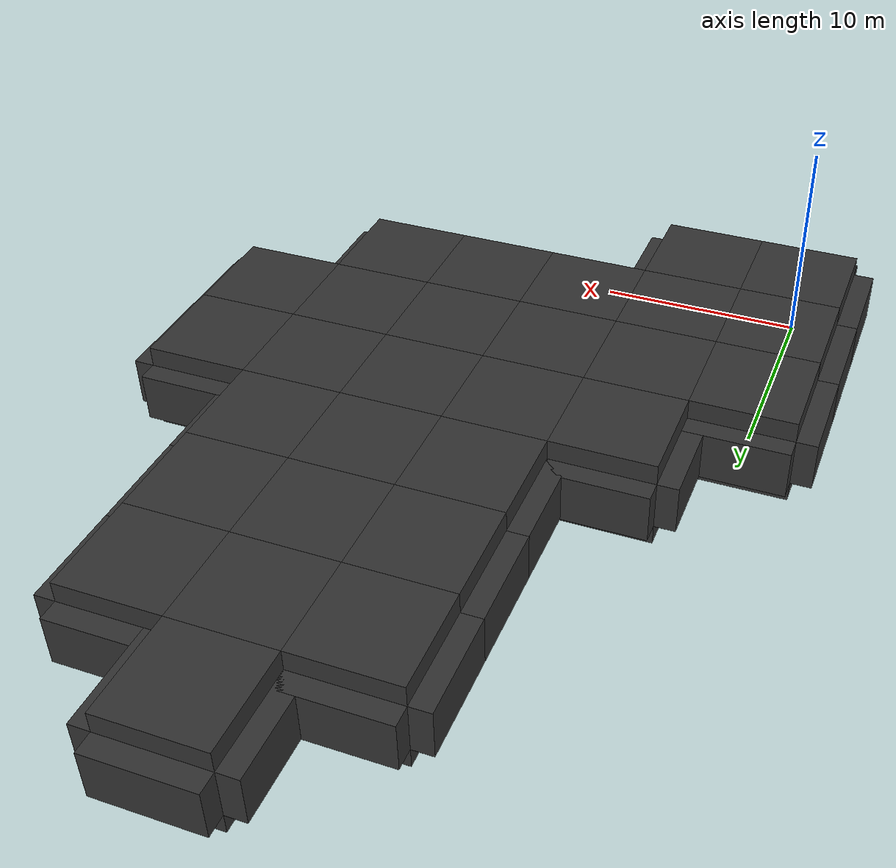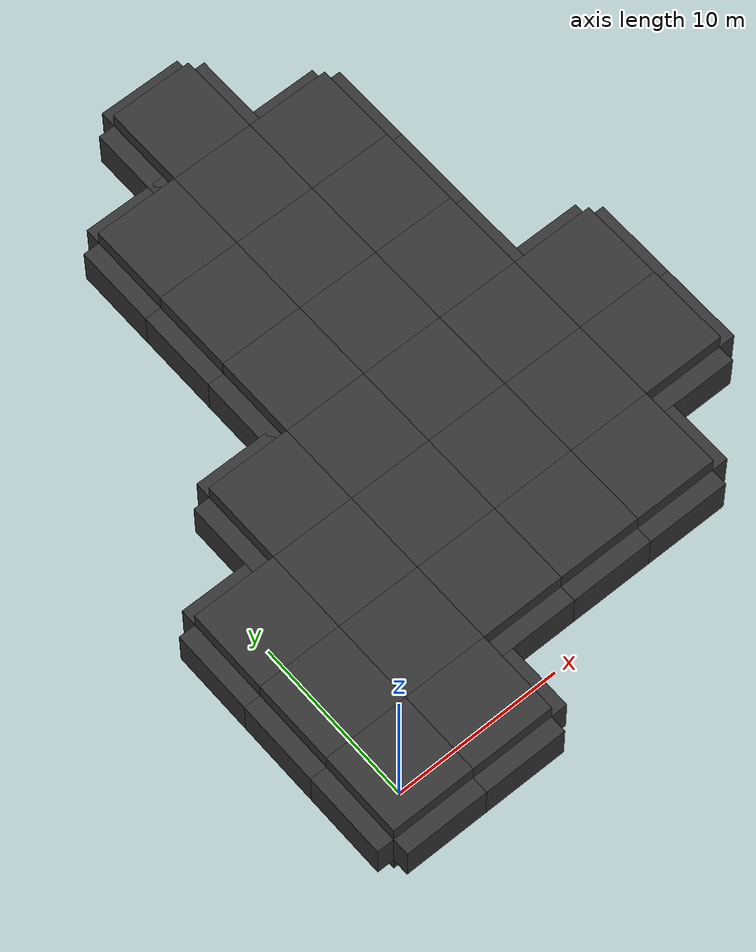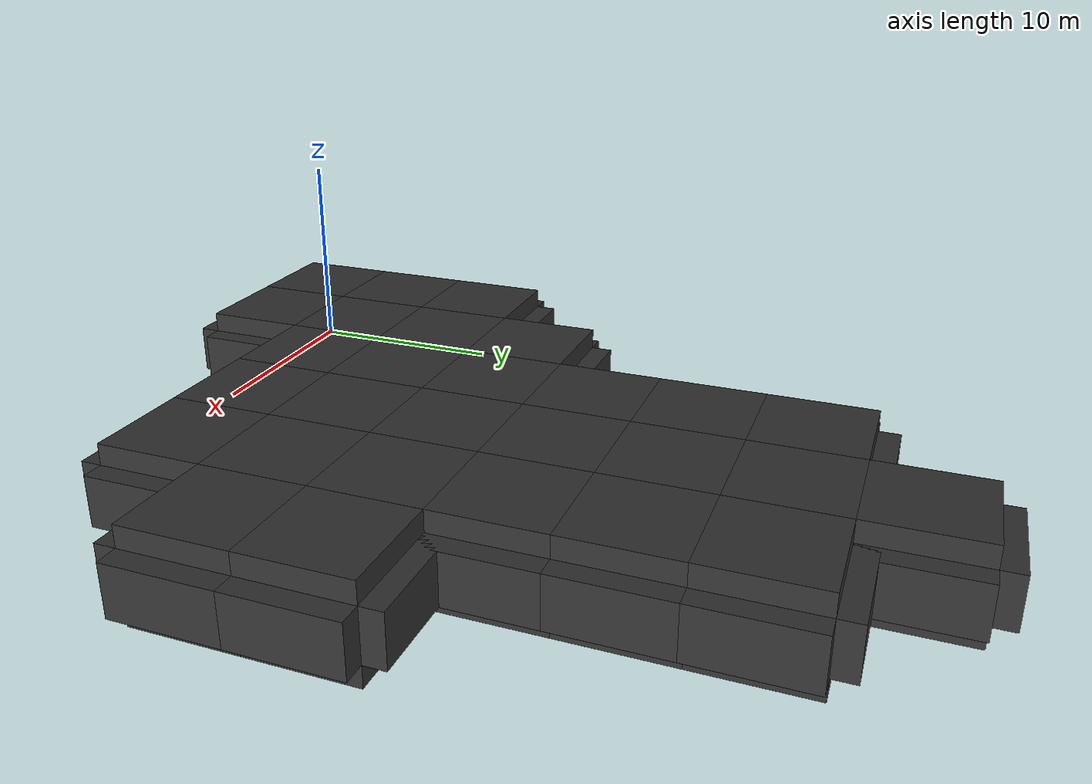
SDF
<sdf version="1.7">
 <world name="RG1">
  <plugin filename="gz-sim-physics-system" name="gz::sim::systems::Physics"/>
  <plugin filename="gz-sim-sensors-system" name="gz::sim::systems::Sensors">
   <render_engine>ogre2</render_engine>
  </plugin>
  <plugin filename="gz-sim-scene-broadcaster-system" name="gz::sim::systems::SceneBroadcaster"/>
  <plugin filename="gz-sim-user-commands-system" name="gz::sim::systems::UserCommands"/>
  <physics name="fast" type="ignored">
   <max_step_size>0.004</max_step_size>
   <real_time_factor>1</real_time_factor>
  </physics>
  <model name="floor_1">
   <static>true</static>
   <pose>0.0 0.0 -0.5 0.0 0.0 0.0</pose>
   <link name="floor_1-base-link">
    <visual name="floor_1-visual">
     <geometry><box><size>5 5 1.0</size></box></geometry>
     <material><diffuse>0.2 0.2 0.2 1</diffuse><specular>0.1 0.1 0.1 1</specular></material>
    </visual>
    <collision name="floor_1-collision"><geometry><box><size>5 5 1.0</size></box></geometry></collision>
   </link>
  </model>
  <model name="ceiling_1">
   <static>true</static>
   <pose>0.0 0.0 2.9 0.0 0.0 0.0</pose>
   <link name="ceiling_1-base-link">
    <visual name="ceiling_1-visual">
     <geometry><box><size>5 5 1.0</size></box></geometry>
     <material><diffuse>0.2 0.2 0.2 1</diffuse><specular>0.1 0.1 0.1 1</specular></material>
    </visual>
    <collision name="ceiling_1-collision"><geometry><box><size>5 5 1.0</size></box></geometry></collision>
    <light type="point" name="ceiling_1-light">
     <pose>0 0 -1 0 0 0</pose>
     <cast_shadows>false</cast_shadows>
     <diffuse>0.8 0.8 0.8 1</diffuse>
     <attenuation>
      <range>10</range>
      <constant>0.8</constant>
      <linear>0.05</linear>
      <quadratic>0.01</quadratic>
     </attenuation>
    </light>
   </link>
  </model>
  <model name="wall_1">
   <static>true</static>
   <pose>-3.0 0.0 1.2 0.0 0.0 1.570796326795</pose>
   <link name="wall_1-base-link">
    <visual name="wall_1-visual">
     <geometry><box><size>5 1 2.4</size></box></geometry>
     <material><diffuse>0.2 0.2 0.2 1</diffuse><specular>0.1 0.1 0.1 1</specular></material>
    </visual>
    <collision name="wall_1-collision"><geometry><box><size>5 1 2.4</size></box></geometry></collision>
   </link>
  </model>
  <model name="wall_2">
   <static>true</static>
   <pose>0.0 -3.0 1.2 0.0 0.0 0.0</pose>
   <link name="wall_2-base-link">
    <visual name="wall_2-visual">
     <geometry><box><size>5 1 2.4</size></box></geometry>
     <material><diffuse>0.2 0.2 0.2 1</diffuse><specular>0.1 0.1 0.1 1</specular></material>
    </visual>
    <collision name="wall_2-collision"><geometry><box><size>5 1 2.4</size></box></geometry></collision>
   </link>
  </model>
  <model name="floor_2">
   <static>true</static>
   <pose>0.0 5.0 -0.5 0.0 0.0 0.0</pose>
   <link name="floor_2-base-link">
    <visual name="floor_2-visual">
     <geometry><box><size>5 5 1.0</size></box></geometry>
     <material><diffuse>0.2 0.2 0.2 1</diffuse><specular>0.1 0.1 0.1 1</specular></material>
    </visual>
    <collision name="floor_2-collision"><geometry><box><size>5 5 1.0</size></box></geometry></collision>
   </link>
  </model>
  <model name="ceiling_2">
   <static>true</static>
   <pose>0.0 5.0 2.9 0.0 0.0 0.0</pose>
   <link name="ceiling_2-base-link">
    <visual name="ceiling_2-visual">
     <geometry><box><size>5 5 1.0</size></box></geometry>
     <material><diffuse>0.2 0.2 0.2 1</diffuse><specular>0.1 0.1 0.1 1</specular></material>
    </visual>
    <collision name="ceiling_2-collision"><geometry><box><size>5 5 1.0</size></box></geometry></collision>
    <light type="point" name="ceiling_2-light">
     <pose>0 0 -1 0 0 0</pose>
     <cast_shadows>false</cast_shadows>
     <diffuse>0.8 0.8 0.8 1</diffuse>
     <attenuation>
      <range>10</range>
      <constant>0.8</constant>
      <linear>0.05</linear>
      <quadratic>0.01</quadratic>
     </attenuation>
    </light>
   </link>
  </model>
  <model name="wall_3">
   <static>true</static>
   <pose>-3.0 5.0 1.2 0.0 0.0 1.570796326795</pose>
   <link name="wall_3-base-link">
    <visual name="wall_3-visual">
     <geometry><box><size>5 1 2.4</size></box></geometry>
     <material><diffuse>0.2 0.2 0.2 1</diffuse><specular>0.1 0.1 0.1 1</specular></material>
    </visual>
    <collision name="wall_3-collision"><geometry><box><size>5 1 2.4</size></box></geometry></collision>
   </link>
  </model>
  <model name="floor_3">
   <static>true</static>
   <pose>0.0 10.0 -0.5 0.0 0.0 0.0</pose>
   <link name="floor_3-base-link">
    <visual name="floor_3-visual">
     <geometry><box><size>5 5 1.0</size></box></geometry>
     <material><diffuse>0.2 0.2 0.2 1</diffuse><specular>0.1 0.1 0.1 1</specular></material>
    </visual>
    <collision name="floor_3-collision"><geometry><box><size>5 5 1.0</size></box></geometry></collision>
   </link>
  </model>
  <model name="ceiling_3">
   <static>true</static>
   <pose>0.0 10.0 2.9 0.0 0.0 0.0</pose>
   <link name="ceiling_3-base-link">
    <visual name="ceiling_3-visual">
     <geometry><box><size>5 5 1.0</size></box></geometry>
     <material><diffuse>0.2 0.2 0.2 1</diffuse><specular>0.1 0.1 0.1 1</specular></material>
    </visual>
    <collision name="ceiling_3-collision"><geometry><box><size>5 5 1.0</size></box></geometry></collision>
    <light type="point" name="ceiling_3-light">
     <pose>0 0 -1 0 0 0</pose>
     <cast_shadows>false</cast_shadows>
     <diffuse>0.8 0.8 0.8 1</diffuse>
     <attenuation>
      <range>10</range>
      <constant>0.8</constant>
      <linear>0.05</linear>
      <quadratic>0.01</quadratic>
     </attenuation>
    </light>
   </link>
  </model>
  <model name="wall_4">
   <static>true</static>
   <pose>-3.0 10.0 1.2 0.0 0.0 1.570796326795</pose>
   <link name="wall_4-base-link">
    <visual name="wall_4-visual">
     <geometry><box><size>5 1 2.4</size></box></geometry>
     <material><diffuse>0.2 0.2 0.2 1</diffuse><specular>0.1 0.1 0.1 1</specular></material>
    </visual>
    <collision name="wall_4-collision"><geometry><box><size>5 1 2.4</size></box></geometry></collision>
   </link>
  </model>
  <model name="wall_5">
   <static>true</static>
   <pose>0.0 13.0 1.2 0.0 0.0 0.0</pose>
   <link name="wall_5-base-link">
    <visual name="wall_5-visual">
     <geometry><box><size>5 1 2.4</size></box></geometry>
     <material><diffuse>0.2 0.2 0.2 1</diffuse><specular>0.1 0.1 0.1 1</specular></material>
    </visual>
    <collision name="wall_5-collision"><geometry><box><size>5 1 2.4</size></box></geometry></collision>
   </link>
  </model>
  <model name="floor_4">
   <static>true</static>
   <pose>5.0 0.0 -0.5 0.0 0.0 0.0</pose>
   <link name="floor_4-base-link">
    <visual name="floor_4-visual">
     <geometry><box><size>5 5 1.0</size></box></geometry>
     <material><diffuse>0.2 0.2 0.2 1</diffuse><specular>0.1 0.1 0.1 1</specular></material>
    </visual>
    <collision name="floor_4-collision"><geometry><box><size>5 5 1.0</size></box></geometry></collision>
   </link>
  </model>
  <model name="ceiling_4">
   <static>true</static>
   <pose>5.0 0.0 2.9 0.0 0.0 0.0</pose>
   <link name="ceiling_4-base-link">
    <visual name="ceiling_4-visual">
     <geometry><box><size>5 5 1.0</size></box></geometry>
     <material><diffuse>0.2 0.2 0.2 1</diffuse><specular>0.1 0.1 0.1 1</specular></material>
    </visual>
    <collision name="ceiling_4-collision"><geometry><box><size>5 5 1.0</size></box></geometry></collision>
    <light type="point" name="ceiling_4-light">
     <pose>0 0 -1 0 0 0</pose>
     <cast_shadows>false</cast_shadows>
     <diffuse>0.8 0.8 0.8 1</diffuse>
     <attenuation>
      <range>10</range>
      <constant>0.8</constant>
      <linear>0.05</linear>
      <quadratic>0.01</quadratic>
     </attenuation>
    </light>
   </link>
  </model>
  <model name="wall_6">
   <static>true</static>
   <pose>8.0 0.0 1.2 0.0 0.0 1.570796326795</pose>
   <link name="wall_6-base-link">
    <visual name="wall_6-visual">
     <geometry><box><size>5 1 2.4</size></box></geometry>
     <material><diffuse>0.2 0.2 0.2 1</diffuse><specular>0.1 0.1 0.1 1</specular></material>
    </visual>
    <collision name="wall_6-collision"><geometry><box><size>5 1 2.4</size></box></geometry></collision>
   </link>
  </model>
  <model name="wall_7">
   <static>true</static>
   <pose>5.0 -3.0 1.2 0.0 0.0 0.0</pose>
   <link name="wall_7-base-link">
    <visual name="wall_7-visual">
     <geometry><box><size>5 1 2.4</size></box></geometry>
     <material><diffuse>0.2 0.2 0.2 1</diffuse><specular>0.1 0.1 0.1 1</specular></material>
    </visual>
    <collision name="wall_7-collision"><geometry><box><size>5 1 2.4</size></box></geometry></collision>
   </link>
  </model>
  <model name="floor_5">
   <static>true</static>
   <pose>5.0 5.0 -0.5 0.0 0.0 0.0</pose>
   <link name="floor_5-base-link">
    <visual name="floor_5-visual">
     <geometry><box><size>5 5 1.0</size></box></geometry>
     <material><diffuse>0.2 0.2 0.2 1</diffuse><specular>0.1 0.1 0.1 1</specular></material>
    </visual>
    <collision name="floor_5-collision"><geometry><box><size>5 5 1.0</size></box></geometry></collision>
   </link>
  </model>
  <model name="ceiling_5">
   <static>true</static>
   <pose>5.0 5.0 2.9 0.0 0.0 0.0</pose>
   <link name="ceiling_5-base-link">
    <visual name="ceiling_5-visual">
     <geometry><box><size>5 5 1.0</size></box></geometry>
     <material><diffuse>0.2 0.2 0.2 1</diffuse><specular>0.1 0.1 0.1 1</specular></material>
    </visual>
    <collision name="ceiling_5-collision"><geometry><box><size>5 5 1.0</size></box></geometry></collision>
    <light type="point" name="ceiling_5-light">
     <pose>0 0 -1 0 0 0</pose>
     <cast_shadows>false</cast_shadows>
     <diffuse>0.8 0.8 0.8 1</diffuse>
     <attenuation>
      <range>10</range>
      <constant>0.8</constant>
      <linear>0.05</linear>
      <quadratic>0.01</quadratic>
     </attenuation>
    </light>
   </link>
  </model>
  <model name="floor_6">
   <static>true</static>
   <pose>5.0 10.0 -0.5 0.0 0.0 0.0</pose>
   <link name="floor_6-base-link">
    <visual name="floor_6-visual">
     <geometry><box><size>5 5 1.0</size></box></geometry>
     <material><diffuse>0.2 0.2 0.2 1</diffuse><specular>0.1 0.1 0.1 1</specular></material>
    </visual>
    <collision name="floor_6-collision"><geometry><box><size>5 5 1.0</size></box></geometry></collision>
   </link>
  </model>
  <model name="ceiling_6">
   <static>true</static>
   <pose>5.0 10.0 2.9 0.0 0.0 0.0</pose>
   <link name="ceiling_6-base-link">
    <visual name="ceiling_6-visual">
     <geometry><box><size>5 5 1.0</size></box></geometry>
     <material><diffuse>0.2 0.2 0.2 1</diffuse><specular>0.1 0.1 0.1 1</specular></material>
    </visual>
    <collision name="ceiling_6-collision"><geometry><box><size>5 5 1.0</size></box></geometry></collision>
    <light type="point" name="ceiling_6-light">
     <pose>0 0 -1 0 0 0</pose>
     <cast_shadows>false</cast_shadows>
     <diffuse>0.8 0.8 0.8 1</diffuse>
     <attenuation>
      <range>10</range>
      <constant>0.8</constant>
      <linear>0.05</linear>
      <quadratic>0.01</quadratic>
     </attenuation>
    </light>
   </link>
  </model>
  <model name="floor_7">
   <static>true</static>
   <pose>5.0 15.0 -0.5 0.0 0.0 0.0</pose>
   <link name="floor_7-base-link">
    <visual name="floor_7-visual">
     <geometry><box><size>5 5 1.0</size></box></geometry>
     <material><diffuse>0.2 0.2 0.2 1</diffuse><specular>0.1 0.1 0.1 1</specular></material>
    </visual>
    <collision name="floor_7-collision"><geometry><box><size>5 5 1.0</size></box></geometry></collision>
   </link>
  </model>
  <model name="ceiling_7">
   <static>true</static>
   <pose>5.0 15.0 2.9 0.0 0.0 0.0</pose>
   <link name="ceiling_7-base-link">
    <visual name="ceiling_7-visual">
     <geometry><box><size>5 5 1.0</size></box></geometry>
     <material><diffuse>0.2 0.2 0.2 1</diffuse><specular>0.1 0.1 0.1 1</specular></material>
    </visual>
    <collision name="ceiling_7-collision"><geometry><box><size>5 5 1.0</size></box></geometry></collision>
    <light type="point" name="ceiling_7-light">
     <pose>0 0 -1 0 0 0</pose>
     <cast_shadows>false</cast_shadows>
     <diffuse>0.8 0.8 0.8 1</diffuse>
     <attenuation>
      <range>10</range>
      <constant>0.8</constant>
      <linear>0.05</linear>
      <quadratic>0.01</quadratic>
     </attenuation>
    </light>
   </link>
  </model>
  <model name="wall_8">
   <static>true</static>
   <pose>2.0 15.0 1.2 0.0 0.0 1.570796326795</pose>
   <link name="wall_8-base-link">
    <visual name="wall_8-visual">
     <geometry><box><size>5 1 2.4</size></box></geometry>
     <material><diffuse>0.2 0.2 0.2 1</diffuse><specular>0.1 0.1 0.1 1</specular></material>
    </visual>
    <collision name="wall_8-collision"><geometry><box><size>5 1 2.4</size></box></geometry></collision>
   </link>
  </model>
  <model name="wall_9">
   <static>true</static>
   <pose>5.0 18.0 1.2 0.0 0.0 0.0</pose>
   <link name="wall_9-base-link">
    <visual name="wall_9-visual">
     <geometry><box><size>5 1 2.4</size></box></geometry>
     <material><diffuse>0.2 0.2 0.2 1</diffuse><specular>0.1 0.1 0.1 1</specular></material>
    </visual>
    <collision name="wall_9-collision"><geometry><box><size>5 1 2.4</size></box></geometry></collision>
   </link>
  </model>
  <model name="floor_8">
   <static>true</static>
   <pose>10.0 5.0 -0.5 0.0 0.0 0.0</pose>
   <link name="floor_8-base-link">
    <visual name="floor_8-visual">
     <geometry><box><size>5 5 1.0</size></box></geometry>
     <material><diffuse>0.2 0.2 0.2 1</diffuse><specular>0.1 0.1 0.1 1</specular></material>
    </visual>
    <collision name="floor_8-collision"><geometry><box><size>5 5 1.0</size></box></geometry></collision>
   </link>
  </model>
  <model name="ceiling_8">
   <static>true</static>
   <pose>10.0 5.0 2.9 0.0 0.0 0.0</pose>
   <link name="ceiling_8-base-link">
    <visual name="ceiling_8-visual">
     <geometry><box><size>5 5 1.0</size></box></geometry>
     <material><diffuse>0.2 0.2 0.2 1</diffuse><specular>0.1 0.1 0.1 1</specular></material>
    </visual>
    <collision name="ceiling_8-collision"><geometry><box><size>5 5 1.0</size></box></geometry></collision>
    <light type="point" name="ceiling_8-light">
     <pose>0 0 -1 0 0 0</pose>
     <cast_shadows>false</cast_shadows>
     <diffuse>0.8 0.8 0.8 1</diffuse>
     <attenuation>
      <range>10</range>
      <constant>0.8</constant>
      <linear>0.05</linear>
      <quadratic>0.01</quadratic>
     </attenuation>
    </light>
   </link>
  </model>
  <model name="wall_10">
   <static>true</static>
   <pose>10.0 2.0 1.2 0.0 0.0 0.0</pose>
   <link name="wall_10-base-link">
    <visual name="wall_10-visual">
     <geometry><box><size>5 1 2.4</size></box></geometry>
     <material><diffuse>0.2 0.2 0.2 1</diffuse><specular>0.1 0.1 0.1 1</specular></material>
    </visual>
    <collision name="wall_10-collision"><geometry><box><size>5 1 2.4</size></box></geometry></collision>
   </link>
  </model>
  <model name="floor_9">
   <static>true</static>
   <pose>10.0 10.0 -0.5 0.0 0.0 0.0</pose>
   <link name="floor_9-base-link">
    <visual name="floor_9-visual">
     <geometry><box><size>5 5 1.0</size></box></geometry>
     <material><diffuse>0.2 0.2 0.2 1</diffuse><specular>0.1 0.1 0.1 1</specular></material>
    </visual>
    <collision name="floor_9-collision"><geometry><box><size>5 5 1.0</size></box></geometry></collision>
   </link>
  </model>
  <model name="ceiling_9">
   <static>true</static>
   <pose>10.0 10.0 2.9 0.0 0.0 0.0</pose>
   <link name="ceiling_9-base-link">
    <visual name="ceiling_9-visual">
     <geometry><box><size>5 5 1.0</size></box></geometry>
     <material><diffuse>0.2 0.2 0.2 1</diffuse><specular>0.1 0.1 0.1 1</specular></material>
    </visual>
    <collision name="ceiling_9-collision"><geometry><box><size>5 5 1.0</size></box></geometry></collision>
    <light type="point" name="ceiling_9-light">
     <pose>0 0 -1 0 0 0</pose>
     <cast_shadows>false</cast_shadows>
     <diffuse>0.8 0.8 0.8 1</diffuse>
     <attenuation>
      <range>10</range>
      <constant>0.8</constant>
      <linear>0.05</linear>
      <quadratic>0.01</quadratic>
     </attenuation>
    </light>
   </link>
  </model>
  <model name="floor_10">
   <static>true</static>
   <pose>10.0 15.0 -0.5 0.0 0.0 0.0</pose>
   <link name="floor_10-base-link">
    <visual name="floor_10-visual">
     <geometry><box><size>5 5 1.0</size></box></geometry>
     <material><diffuse>0.2 0.2 0.2 1</diffuse><specular>0.1 0.1 0.1 1</specular></material>
    </visual>
    <collision name="floor_10-collision"><geometry><box><size>5 5 1.0</size></box></geometry></collision>
   </link>
  </model>
  <model name="ceiling_10">
   <static>true</static>
   <pose>10.0 15.0 2.9 0.0 0.0 0.0</pose>
   <link name="ceiling_10-base-link">
    <visual name="ceiling_10-visual">
     <geometry><box><size>5 5 1.0</size></box></geometry>
     <material><diffuse>0.2 0.2 0.2 1</diffuse><specular>0.1 0.1 0.1 1</specular></material>
    </visual>
    <collision name="ceiling_10-collision"><geometry><box><size>5 5 1.0</size></box></geometry></collision>
    <light type="point" name="ceiling_10-light">
     <pose>0 0 -1 0 0 0</pose>
     <cast_shadows>false</cast_shadows>
     <diffuse>0.8 0.8 0.8 1</diffuse>
     <attenuation>
      <range>10</range>
      <constant>0.8</constant>
      <linear>0.05</linear>
      <quadratic>0.01</quadratic>
     </attenuation>
    </light>
   </link>
  </model>
  <model name="floor_11">
   <static>true</static>
   <pose>10.0 20.0 -0.5 0.0 0.0 0.0</pose>
   <link name="floor_11-base-link">
    <visual name="floor_11-visual">
     <geometry><box><size>5 5 1.0</size></box></geometry>
     <material><diffuse>0.2 0.2 0.2 1</diffuse><specular>0.1 0.1 0.1 1</specular></material>
    </visual>
    <collision name="floor_11-collision"><geometry><box><size>5 5 1.0</size></box></geometry></collision>
   </link>
  </model>
  <model name="ceiling_11">
   <static>true</static>
   <pose>10.0 20.0 2.9 0.0 0.0 0.0</pose>
   <link name="ceiling_11-base-link">
    <visual name="ceiling_11-visual">
     <geometry><box><size>5 5 1.0</size></box></geometry>
     <material><diffuse>0.2 0.2 0.2 1</diffuse><specular>0.1 0.1 0.1 1</specular></material>
    </visual>
    <collision name="ceiling_11-collision"><geometry><box><size>5 5 1.0</size></box></geometry></collision>
    <light type="point" name="ceiling_11-light">
     <pose>0 0 -1 0 0 0</pose>
     <cast_shadows>false</cast_shadows>
     <diffuse>0.8 0.8 0.8 1</diffuse>
     <attenuation>
      <range>10</range>
      <constant>0.8</constant>
      <linear>0.05</linear>
      <quadratic>0.01</quadratic>
     </attenuation>
    </light>
   </link>
  </model>
  <model name="wall_11">
   <static>true</static>
   <pose>7.0 20.0 1.2 0.0 0.0 1.570796326795</pose>
   <link name="wall_11-base-link">
    <visual name="wall_11-visual">
     <geometry><box><size>5 1 2.4</size></box></geometry>
     <material><diffuse>0.2 0.2 0.2 1</diffuse><specular>0.1 0.1 0.1 1</specular></material>
    </visual>
    <collision name="wall_11-collision"><geometry><box><size>5 1 2.4</size></box></geometry></collision>
   </link>
  </model>
  <model name="floor_12">
   <static>true</static>
   <pose>10.0 25.0 -0.5 0.0 0.0 0.0</pose>
   <link name="floor_12-base-link">
    <visual name="floor_12-visual">
     <geometry><box><size>5 5 1.0</size></box></geometry>
     <material><diffuse>0.2 0.2 0.2 1</diffuse><specular>0.1 0.1 0.1 1</specular></material>
    </visual>
    <collision name="floor_12-collision"><geometry><box><size>5 5 1.0</size></box></geometry></collision>
   </link>
  </model>
  <model name="ceiling_12">
   <static>true</static>
   <pose>10.0 25.0 2.9 0.0 0.0 0.0</pose>
   <link name="ceiling_12-base-link">
    <visual name="ceiling_12-visual">
     <geometry><box><size>5 5 1.0</size></box></geometry>
     <material><diffuse>0.2 0.2 0.2 1</diffuse><specular>0.1 0.1 0.1 1</specular></material>
    </visual>
    <collision name="ceiling_12-collision"><geometry><box><size>5 5 1.0</size></box></geometry></collision>
    <light type="point" name="ceiling_12-light">
     <pose>0 0 -1 0 0 0</pose>
     <cast_shadows>false</cast_shadows>
     <diffuse>0.8 0.8 0.8 1</diffuse>
     <attenuation>
      <range>10</range>
      <constant>0.8</constant>
      <linear>0.05</linear>
      <quadratic>0.01</quadratic>
     </attenuation>
    </light>
   </link>
  </model>
  <model name="wall_12">
   <static>true</static>
   <pose>7.0 25.0 1.2 0.0 0.0 1.570796326795</pose>
   <link name="wall_12-base-link">
    <visual name="wall_12-visual">
     <geometry><box><size>5 1 2.4</size></box></geometry>
     <material><diffuse>0.2 0.2 0.2 1</diffuse><specular>0.1 0.1 0.1 1</specular></material>
    </visual>
    <collision name="wall_12-collision"><geometry><box><size>5 1 2.4</size></box></geometry></collision>
   </link>
  </model>
  <model name="floor_13">
   <static>true</static>
   <pose>10.0 30.0 -0.5 0.0 0.0 0.0</pose>
   <link name="floor_13-base-link">
    <visual name="floor_13-visual">
     <geometry><box><size>5 5 1.0</size></box></geometry>
     <material><diffuse>0.2 0.2 0.2 1</diffuse><specular>0.1 0.1 0.1 1</specular></material>
    </visual>
    <collision name="floor_13-collision"><geometry><box><size>5 5 1.0</size></box></geometry></collision>
   </link>
  </model>
  <model name="ceiling_13">
   <static>true</static>
   <pose>10.0 30.0 2.9 0.0 0.0 0.0</pose>
   <link name="ceiling_13-base-link">
    <visual name="ceiling_13-visual">
     <geometry><box><size>5 5 1.0</size></box></geometry>
     <material><diffuse>0.2 0.2 0.2 1</diffuse><specular>0.1 0.1 0.1 1</specular></material>
    </visual>
    <collision name="ceiling_13-collision"><geometry><box><size>5 5 1.0</size></box></geometry></collision>
    <light type="point" name="ceiling_13-light">
     <pose>0 0 -1 0 0 0</pose>
     <cast_shadows>false</cast_shadows>
     <diffuse>0.8 0.8 0.8 1</diffuse>
     <attenuation>
      <range>10</range>
      <constant>0.8</constant>
      <linear>0.05</linear>
      <quadratic>0.01</quadratic>
     </attenuation>
    </light>
   </link>
  </model>
  <model name="wall_13">
   <static>true</static>
   <pose>7.0 30.0 1.2 0.0 0.0 1.570796326795</pose>
   <link name="wall_13-base-link">
    <visual name="wall_13-visual">
     <geometry><box><size>5 1 2.4</size></box></geometry>
     <material><diffuse>0.2 0.2 0.2 1</diffuse><specular>0.1 0.1 0.1 1</specular></material>
    </visual>
    <collision name="wall_13-collision"><geometry><box><size>5 1 2.4</size></box></geometry></collision>
   </link>
  </model>
  <model name="wall_14">
   <static>true</static>
   <pose>10.0 33.0 1.2 0.0 0.0 0.0</pose>
   <link name="wall_14-base-link">
    <visual name="wall_14-visual">
     <geometry><box><size>5 1 2.4</size></box></geometry>
     <material><diffuse>0.2 0.2 0.2 1</diffuse><specular>0.1 0.1 0.1 1</specular></material>
    </visual>
    <collision name="wall_14-collision"><geometry><box><size>5 1 2.4</size></box></geometry></collision>
   </link>
  </model>
  <model name="floor_14">
   <static>true</static>
   <pose>15.0 5.0 -0.5 0.0 0.0 0.0</pose>
   <link name="floor_14-base-link">
    <visual name="floor_14-visual">
     <geometry><box><size>5 5 1.0</size></box></geometry>
     <material><diffuse>0.2 0.2 0.2 1</diffuse><specular>0.1 0.1 0.1 1</specular></material>
    </visual>
    <collision name="floor_14-collision"><geometry><box><size>5 5 1.0</size></box></geometry></collision>
   </link>
  </model>
  <model name="ceiling_14">
   <static>true</static>
   <pose>15.0 5.0 2.9 0.0 0.0 0.0</pose>
   <link name="ceiling_14-base-link">
    <visual name="ceiling_14-visual">
     <geometry><box><size>5 5 1.0</size></box></geometry>
     <material><diffuse>0.2 0.2 0.2 1</diffuse><specular>0.1 0.1 0.1 1</specular></material>
    </visual>
    <collision name="ceiling_14-collision"><geometry><box><size>5 5 1.0</size></box></geometry></collision>
    <light type="point" name="ceiling_14-light">
     <pose>0 0 -1 0 0 0</pose>
     <cast_shadows>false</cast_shadows>
     <diffuse>0.8 0.8 0.8 1</diffuse>
     <attenuation>
      <range>10</range>
      <constant>0.8</constant>
      <linear>0.05</linear>
      <quadratic>0.01</quadratic>
     </attenuation>
    </light>
   </link>
  </model>
  <model name="wall_15">
   <static>true</static>
   <pose>15.0 2.0 1.2 0.0 0.0 0.0</pose>
   <link name="wall_15-base-link">
    <visual name="wall_15-visual">
     <geometry><box><size>5 1 2.4</size></box></geometry>
     <material><diffuse>0.2 0.2 0.2 1</diffuse><specular>0.1 0.1 0.1 1</specular></material>
    </visual>
    <collision name="wall_15-collision"><geometry><box><size>5 1 2.4</size></box></geometry></collision>
   </link>
  </model>
  <model name="floor_15">
   <static>true</static>
   <pose>15.0 10.0 -0.5 0.0 0.0 0.0</pose>
   <link name="floor_15-base-link">
    <visual name="floor_15-visual">
     <geometry><box><size>5 5 1.0</size></box></geometry>
     <material><diffuse>0.2 0.2 0.2 1</diffuse><specular>0.1 0.1 0.1 1</specular></material>
    </visual>
    <collision name="floor_15-collision"><geometry><box><size>5 5 1.0</size></box></geometry></collision>
   </link>
  </model>
  <model name="ceiling_15">
   <static>true</static>
   <pose>15.0 10.0 2.9 0.0 0.0 0.0</pose>
   <link name="ceiling_15-base-link">
    <visual name="ceiling_15-visual">
     <geometry><box><size>5 5 1.0</size></box></geometry>
     <material><diffuse>0.2 0.2 0.2 1</diffuse><specular>0.1 0.1 0.1 1</specular></material>
    </visual>
    <collision name="ceiling_15-collision"><geometry><box><size>5 5 1.0</size></box></geometry></collision>
    <light type="point" name="ceiling_15-light">
     <pose>0 0 -1 0 0 0</pose>
     <cast_shadows>false</cast_shadows>
     <diffuse>0.8 0.8 0.8 1</diffuse>
     <attenuation>
      <range>10</range>
      <constant>0.8</constant>
      <linear>0.05</linear>
      <quadratic>0.01</quadratic>
     </attenuation>
    </light>
   </link>
  </model>
  <model name="floor_16">
   <static>true</static>
   <pose>15.0 15.0 -0.5 0.0 0.0 0.0</pose>
   <link name="floor_16-base-link">
    <visual name="floor_16-visual">
     <geometry><box><size>5 5 1.0</size></box></geometry>
     <material><diffuse>0.2 0.2 0.2 1</diffuse><specular>0.1 0.1 0.1 1</specular></material>
    </visual>
    <collision name="floor_16-collision"><geometry><box><size>5 5 1.0</size></box></geometry></collision>
   </link>
  </model>
  <model name="ceiling_16">
   <static>true</static>
   <pose>15.0 15.0 2.9 0.0 0.0 0.0</pose>
   <link name="ceiling_16-base-link">
    <visual name="ceiling_16-visual">
     <geometry><box><size>5 5 1.0</size></box></geometry>
     <material><diffuse>0.2 0.2 0.2 1</diffuse><specular>0.1 0.1 0.1 1</specular></material>
    </visual>
    <collision name="ceiling_16-collision"><geometry><box><size>5 5 1.0</size></box></geometry></collision>
    <light type="point" name="ceiling_16-light">
     <pose>0 0 -1 0 0 0</pose>
     <cast_shadows>false</cast_shadows>
     <diffuse>0.8 0.8 0.8 1</diffuse>
     <attenuation>
      <range>10</range>
      <constant>0.8</constant>
      <linear>0.05</linear>
      <quadratic>0.01</quadratic>
     </attenuation>
    </light>
   </link>
  </model>
  <model name="floor_17">
   <static>true</static>
   <pose>15.0 20.0 -0.5 0.0 0.0 0.0</pose>
   <link name="floor_17-base-link">
    <visual name="floor_17-visual">
     <geometry><box><size>5 5 1.0</size></box></geometry>
     <material><diffuse>0.2 0.2 0.2 1</diffuse><specular>0.1 0.1 0.1 1</specular></material>
    </visual>
    <collision name="floor_17-collision"><geometry><box><size>5 5 1.0</size></box></geometry></collision>
   </link>
  </model>
  <model name="ceiling_17">
   <static>true</static>
   <pose>15.0 20.0 2.9 0.0 0.0 0.0</pose>
   <link name="ceiling_17-base-link">
    <visual name="ceiling_17-visual">
     <geometry><box><size>5 5 1.0</size></box></geometry>
     <material><diffuse>0.2 0.2 0.2 1</diffuse><specular>0.1 0.1 0.1 1</specular></material>
    </visual>
    <collision name="ceiling_17-collision"><geometry><box><size>5 5 1.0</size></box></geometry></collision>
    <light type="point" name="ceiling_17-light">
     <pose>0 0 -1 0 0 0</pose>
     <cast_shadows>false</cast_shadows>
     <diffuse>0.8 0.8 0.8 1</diffuse>
     <attenuation>
      <range>10</range>
      <constant>0.8</constant>
      <linear>0.05</linear>
      <quadratic>0.01</quadratic>
     </attenuation>
    </light>
   </link>
  </model>
  <model name="floor_18">
   <static>true</static>
   <pose>15.0 25.0 -0.5 0.0 0.0 0.0</pose>
   <link name="floor_18-base-link">
    <visual name="floor_18-visual">
     <geometry><box><size>5 5 1.0</size></box></geometry>
     <material><diffuse>0.2 0.2 0.2 1</diffuse><specular>0.1 0.1 0.1 1</specular></material>
    </visual>
    <collision name="floor_18-collision"><geometry><box><size>5 5 1.0</size></box></geometry></collision>
   </link>
  </model>
  <model name="ceiling_18">
   <static>true</static>
   <pose>15.0 25.0 2.9 0.0 0.0 0.0</pose>
   <link name="ceiling_18-base-link">
    <visual name="ceiling_18-visual">
     <geometry><box><size>5 5 1.0</size></box></geometry>
     <material><diffuse>0.2 0.2 0.2 1</diffuse><specular>0.1 0.1 0.1 1</specular></material>
    </visual>
    <collision name="ceiling_18-collision"><geometry><box><size>5 5 1.0</size></box></geometry></collision>
    <light type="point" name="ceiling_18-light">
     <pose>0 0 -1 0 0 0</pose>
     <cast_shadows>false</cast_shadows>
     <diffuse>0.8 0.8 0.8 1</diffuse>
     <attenuation>
      <range>10</range>
      <constant>0.8</constant>
      <linear>0.05</linear>
      <quadratic>0.01</quadratic>
     </attenuation>
    </light>
   </link>
  </model>
  <model name="floor_19">
   <static>true</static>
   <pose>15.0 30.0 -0.5 0.0 0.0 0.0</pose>
   <link name="floor_19-base-link">
    <visual name="floor_19-visual">
     <geometry><box><size>5 5 1.0</size></box></geometry>
     <material><diffuse>0.2 0.2 0.2 1</diffuse><specular>0.1 0.1 0.1 1</specular></material>
    </visual>
    <collision name="floor_19-collision"><geometry><box><size>5 5 1.0</size></box></geometry></collision>
   </link>
  </model>
  <model name="ceiling_19">
   <static>true</static>
   <pose>15.0 30.0 2.9 0.0 0.0 0.0</pose>
   <link name="ceiling_19-base-link">
    <visual name="ceiling_19-visual">
     <geometry><box><size>5 5 1.0</size></box></geometry>
     <material><diffuse>0.2 0.2 0.2 1</diffuse><specular>0.1 0.1 0.1 1</specular></material>
    </visual>
    <collision name="ceiling_19-collision"><geometry><box><size>5 5 1.0</size></box></geometry></collision>
    <light type="point" name="ceiling_19-light">
     <pose>0 0 -1 0 0 0</pose>
     <cast_shadows>false</cast_shadows>
     <diffuse>0.8 0.8 0.8 1</diffuse>
     <attenuation>
      <range>10</range>
      <constant>0.8</constant>
      <linear>0.05</linear>
      <quadratic>0.01</quadratic>
     </attenuation>
    </light>
   </link>
  </model>
  <model name="floor_20">
   <static>true</static>
   <pose>15.0 35.0 -0.5 0.0 0.0 0.0</pose>
   <link name="floor_20-base-link">
    <visual name="floor_20-visual">
     <geometry><box><size>5 5 1.0</size></box></geometry>
     <material><diffuse>0.2 0.2 0.2 1</diffuse><specular>0.1 0.1 0.1 1</specular></material>
    </visual>
    <collision name="floor_20-collision"><geometry><box><size>5 5 1.0</size></box></geometry></collision>
   </link>
  </model>
  <model name="ceiling_20">
   <static>true</static>
   <pose>15.0 35.0 2.9 0.0 0.0 0.0</pose>
   <link name="ceiling_20-base-link">
    <visual name="ceiling_20-visual">
     <geometry><box><size>5 5 1.0</size></box></geometry>
     <material><diffuse>0.2 0.2 0.2 1</diffuse><specular>0.1 0.1 0.1 1</specular></material>
    </visual>
    <collision name="ceiling_20-collision"><geometry><box><size>5 5 1.0</size></box></geometry></collision>
    <light type="point" name="ceiling_20-light">
     <pose>0 0 -1 0 0 0</pose>
     <cast_shadows>false</cast_shadows>
     <diffuse>0.8 0.8 0.8 1</diffuse>
     <attenuation>
      <range>10</range>
      <constant>0.8</constant>
      <linear>0.05</linear>
      <quadratic>0.01</quadratic>
     </attenuation>
    </light>
   </link>
  </model>
  <model name="wall_16">
   <static>true</static>
   <pose>12.0 35.0 1.2 0.0 0.0 1.570796326795</pose>
   <link name="wall_16-base-link">
    <visual name="wall_16-visual">
     <geometry><box><size>5 1 2.4</size></box></geometry>
     <material><diffuse>0.2 0.2 0.2 1</diffuse><specular>0.1 0.1 0.1 1</specular></material>
    </visual>
    <collision name="wall_16-collision"><geometry><box><size>5 1 2.4</size></box></geometry></collision>
   </link>
  </model>
  <model name="wall_17">
   <static>true</static>
   <pose>18.0 35.0 1.2 0.0 0.0 1.570796326795</pose>
   <link name="wall_17-base-link">
    <visual name="wall_17-visual">
     <geometry><box><size>5 1 2.4</size></box></geometry>
     <material><diffuse>0.2 0.2 0.2 1</diffuse><specular>0.1 0.1 0.1 1</specular></material>
    </visual>
    <collision name="wall_17-collision"><geometry><box><size>5 1 2.4</size></box></geometry></collision>
   </link>
  </model>
  <model name="wall_18">
   <static>true</static>
   <pose>15.0 38.0 1.2 0.0 0.0 0.0</pose>
   <link name="wall_18-base-link">
    <visual name="wall_18-visual">
     <geometry><box><size>5 1 2.4</size></box></geometry>
     <material><diffuse>0.2 0.2 0.2 1</diffuse><specular>0.1 0.1 0.1 1</specular></material>
    </visual>
    <collision name="wall_18-collision"><geometry><box><size>5 1 2.4</size></box></geometry></collision>
   </link>
  </model>
  <model name="floor_21">
   <static>true</static>
   <pose>20.0 5.0 -0.5 0.0 0.0 0.0</pose>
   <link name="floor_21-base-link">
    <visual name="floor_21-visual">
     <geometry><box><size>5 5 1.0</size></box></geometry>
     <material><diffuse>0.2 0.2 0.2 1</diffuse><specular>0.1 0.1 0.1 1</specular></material>
    </visual>
    <collision name="floor_21-collision"><geometry><box><size>5 5 1.0</size></box></geometry></collision>
   </link>
  </model>
  <model name="ceiling_21">
   <static>true</static>
   <pose>20.0 5.0 2.9 0.0 0.0 0.0</pose>
   <link name="ceiling_21-base-link">
    <visual name="ceiling_21-visual">
     <geometry><box><size>5 5 1.0</size></box></geometry>
     <material><diffuse>0.2 0.2 0.2 1</diffuse><specular>0.1 0.1 0.1 1</specular></material>
    </visual>
    <collision name="ceiling_21-collision"><geometry><box><size>5 5 1.0</size></box></geometry></collision>
    <light type="point" name="ceiling_21-light">
     <pose>0 0 -1 0 0 0</pose>
     <cast_shadows>false</cast_shadows>
     <diffuse>0.8 0.8 0.8 1</diffuse>
     <attenuation>
      <range>10</range>
      <constant>0.8</constant>
      <linear>0.05</linear>
      <quadratic>0.01</quadratic>
     </attenuation>
    </light>
   </link>
  </model>
  <model name="wall_19">
   <static>true</static>
   <pose>23.0 5.0 1.2 0.0 0.0 1.570796326795</pose>
   <link name="wall_19-base-link">
    <visual name="wall_19-visual">
     <geometry><box><size>5 1 2.4</size></box></geometry>
     <material><diffuse>0.2 0.2 0.2 1</diffuse><specular>0.1 0.1 0.1 1</specular></material>
    </visual>
    <collision name="wall_19-collision"><geometry><box><size>5 1 2.4</size></box></geometry></collision>
   </link>
  </model>
  <model name="wall_20">
   <static>true</static>
   <pose>20.0 2.0 1.2 0.0 0.0 0.0</pose>
   <link name="wall_20-base-link">
    <visual name="wall_20-visual">
     <geometry><box><size>5 1 2.4</size></box></geometry>
     <material><diffuse>0.2 0.2 0.2 1</diffuse><specular>0.1 0.1 0.1 1</specular></material>
    </visual>
    <collision name="wall_20-collision"><geometry><box><size>5 1 2.4</size></box></geometry></collision>
   </link>
  </model>
  <model name="floor_22">
   <static>true</static>
   <pose>20.0 10.0 -0.5 0.0 0.0 0.0</pose>
   <link name="floor_22-base-link">
    <visual name="floor_22-visual">
     <geometry><box><size>5 5 1.0</size></box></geometry>
     <material><diffuse>0.2 0.2 0.2 1</diffuse><specular>0.1 0.1 0.1 1</specular></material>
    </visual>
    <collision name="floor_22-collision"><geometry><box><size>5 5 1.0</size></box></geometry></collision>
   </link>
  </model>
  <model name="ceiling_22">
   <static>true</static>
   <pose>20.0 10.0 2.9 0.0 0.0 0.0</pose>
   <link name="ceiling_22-base-link">
    <visual name="ceiling_22-visual">
     <geometry><box><size>5 5 1.0</size></box></geometry>
     <material><diffuse>0.2 0.2 0.2 1</diffuse><specular>0.1 0.1 0.1 1</specular></material>
    </visual>
    <collision name="ceiling_22-collision"><geometry><box><size>5 5 1.0</size></box></geometry></collision>
    <light type="point" name="ceiling_22-light">
     <pose>0 0 -1 0 0 0</pose>
     <cast_shadows>false</cast_shadows>
     <diffuse>0.8 0.8 0.8 1</diffuse>
     <attenuation>
      <range>10</range>
      <constant>0.8</constant>
      <linear>0.05</linear>
      <quadratic>0.01</quadratic>
     </attenuation>
    </light>
   </link>
  </model>
  <model name="floor_23">
   <static>true</static>
   <pose>20.0 15.0 -0.5 0.0 0.0 0.0</pose>
   <link name="floor_23-base-link">
    <visual name="floor_23-visual">
     <geometry><box><size>5 5 1.0</size></box></geometry>
     <material><diffuse>0.2 0.2 0.2 1</diffuse><specular>0.1 0.1 0.1 1</specular></material>
    </visual>
    <collision name="floor_23-collision"><geometry><box><size>5 5 1.0</size></box></geometry></collision>
   </link>
  </model>
  <model name="ceiling_23">
   <static>true</static>
   <pose>20.0 15.0 2.9 0.0 0.0 0.0</pose>
   <link name="ceiling_23-base-link">
    <visual name="ceiling_23-visual">
     <geometry><box><size>5 5 1.0</size></box></geometry>
     <material><diffuse>0.2 0.2 0.2 1</diffuse><specular>0.1 0.1 0.1 1</specular></material>
    </visual>
    <collision name="ceiling_23-collision"><geometry><box><size>5 5 1.0</size></box></geometry></collision>
    <light type="point" name="ceiling_23-light">
     <pose>0 0 -1 0 0 0</pose>
     <cast_shadows>false</cast_shadows>
     <diffuse>0.8 0.8 0.8 1</diffuse>
     <attenuation>
      <range>10</range>
      <constant>0.8</constant>
      <linear>0.05</linear>
      <quadratic>0.01</quadratic>
     </attenuation>
    </light>
   </link>
  </model>
  <model name="floor_24">
   <static>true</static>
   <pose>20.0 20.0 -0.5 0.0 0.0 0.0</pose>
   <link name="floor_24-base-link">
    <visual name="floor_24-visual">
     <geometry><box><size>5 5 1.0</size></box></geometry>
     <material><diffuse>0.2 0.2 0.2 1</diffuse><specular>0.1 0.1 0.1 1</specular></material>
    </visual>
    <collision name="floor_24-collision"><geometry><box><size>5 5 1.0</size></box></geometry></collision>
   </link>
  </model>
  <model name="ceiling_24">
   <static>true</static>
   <pose>20.0 20.0 2.9 0.0 0.0 0.0</pose>
   <link name="ceiling_24-base-link">
    <visual name="ceiling_24-visual">
     <geometry><box><size>5 5 1.0</size></box></geometry>
     <material><diffuse>0.2 0.2 0.2 1</diffuse><specular>0.1 0.1 0.1 1</specular></material>
    </visual>
    <collision name="ceiling_24-collision"><geometry><box><size>5 5 1.0</size></box></geometry></collision>
    <light type="point" name="ceiling_24-light">
     <pose>0 0 -1 0 0 0</pose>
     <cast_shadows>false</cast_shadows>
     <diffuse>0.8 0.8 0.8 1</diffuse>
     <attenuation>
      <range>10</range>
      <constant>0.8</constant>
      <linear>0.05</linear>
      <quadratic>0.01</quadratic>
     </attenuation>
    </light>
   </link>
  </model>
  <model name="wall_21">
   <static>true</static>
   <pose>23.0 20.0 1.2 0.0 0.0 1.570796326795</pose>
   <link name="wall_21-base-link">
    <visual name="wall_21-visual">
     <geometry><box><size>5 1 2.4</size></box></geometry>
     <material><diffuse>0.2 0.2 0.2 1</diffuse><specular>0.1 0.1 0.1 1</specular></material>
    </visual>
    <collision name="wall_21-collision"><geometry><box><size>5 1 2.4</size></box></geometry></collision>
   </link>
  </model>
  <model name="floor_25">
   <static>true</static>
   <pose>20.0 25.0 -0.5 0.0 0.0 0.0</pose>
   <link name="floor_25-base-link">
    <visual name="floor_25-visual">
     <geometry><box><size>5 5 1.0</size></box></geometry>
     <material><diffuse>0.2 0.2 0.2 1</diffuse><specular>0.1 0.1 0.1 1</specular></material>
    </visual>
    <collision name="floor_25-collision"><geometry><box><size>5 5 1.0</size></box></geometry></collision>
   </link>
  </model>
  <model name="ceiling_25">
   <static>true</static>
   <pose>20.0 25.0 2.9 0.0 0.0 0.0</pose>
   <link name="ceiling_25-base-link">
    <visual name="ceiling_25-visual">
     <geometry><box><size>5 5 1.0</size></box></geometry>
     <material><diffuse>0.2 0.2 0.2 1</diffuse><specular>0.1 0.1 0.1 1</specular></material>
    </visual>
    <collision name="ceiling_25-collision"><geometry><box><size>5 5 1.0</size></box></geometry></collision>
    <light type="point" name="ceiling_25-light">
     <pose>0 0 -1 0 0 0</pose>
     <cast_shadows>false</cast_shadows>
     <diffuse>0.8 0.8 0.8 1</diffuse>
     <attenuation>
      <range>10</range>
      <constant>0.8</constant>
      <linear>0.05</linear>
      <quadratic>0.01</quadratic>
     </attenuation>
    </light>
   </link>
  </model>
  <model name="wall_22">
   <static>true</static>
   <pose>23.0 25.0 1.2 0.0 0.0 1.570796326795</pose>
   <link name="wall_22-base-link">
    <visual name="wall_22-visual">
     <geometry><box><size>5 1 2.4</size></box></geometry>
     <material><diffuse>0.2 0.2 0.2 1</diffuse><specular>0.1 0.1 0.1 1</specular></material>
    </visual>
    <collision name="wall_22-collision"><geometry><box><size>5 1 2.4</size></box></geometry></collision>
   </link>
  </model>
  <model name="floor_26">
   <static>true</static>
   <pose>20.0 30.0 -0.5 0.0 0.0 0.0</pose>
   <link name="floor_26-base-link">
    <visual name="floor_26-visual">
     <geometry><box><size>5 5 1.0</size></box></geometry>
     <material><diffuse>0.2 0.2 0.2 1</diffuse><specular>0.1 0.1 0.1 1</specular></material>
    </visual>
    <collision name="floor_26-collision"><geometry><box><size>5 5 1.0</size></box></geometry></collision>
   </link>
  </model>
  <model name="ceiling_26">
   <static>true</static>
   <pose>20.0 30.0 2.9 0.0 0.0 0.0</pose>
   <link name="ceiling_26-base-link">
    <visual name="ceiling_26-visual">
     <geometry><box><size>5 5 1.0</size></box></geometry>
     <material><diffuse>0.2 0.2 0.2 1</diffuse><specular>0.1 0.1 0.1 1</specular></material>
    </visual>
    <collision name="ceiling_26-collision"><geometry><box><size>5 5 1.0</size></box></geometry></collision>
    <light type="point" name="ceiling_26-light">
     <pose>0 0 -1 0 0 0</pose>
     <cast_shadows>false</cast_shadows>
     <diffuse>0.8 0.8 0.8 1</diffuse>
     <attenuation>
      <range>10</range>
      <constant>0.8</constant>
      <linear>0.05</linear>
      <quadratic>0.01</quadratic>
     </attenuation>
    </light>
   </link>
  </model>
  <model name="wall_23">
   <static>true</static>
   <pose>23.0 30.0 1.2 0.0 0.0 1.570796326795</pose>
   <link name="wall_23-base-link">
    <visual name="wall_23-visual">
     <geometry><box><size>5 1 2.4</size></box></geometry>
     <material><diffuse>0.2 0.2 0.2 1</diffuse><specular>0.1 0.1 0.1 1</specular></material>
    </visual>
    <collision name="wall_23-collision"><geometry><box><size>5 1 2.4</size></box></geometry></collision>
   </link>
  </model>
  <model name="wall_24">
   <static>true</static>
   <pose>20.0 33.0 1.2 0.0 0.0 0.0</pose>
   <link name="wall_24-base-link">
    <visual name="wall_24-visual">
     <geometry><box><size>5 1 2.4</size></box></geometry>
     <material><diffuse>0.2 0.2 0.2 1</diffuse><specular>0.1 0.1 0.1 1</specular></material>
    </visual>
    <collision name="wall_24-collision"><geometry><box><size>5 1 2.4</size></box></geometry></collision>
   </link>
  </model>
  <model name="floor_27">
   <static>true</static>
   <pose>25.0 10.0 -0.5 0.0 0.0 0.0</pose>
   <link name="floor_27-base-link">
    <visual name="floor_27-visual">
     <geometry><box><size>5 5 1.0</size></box></geometry>
     <material><diffuse>0.2 0.2 0.2 1</diffuse><specular>0.1 0.1 0.1 1</specular></material>
    </visual>
    <collision name="floor_27-collision"><geometry><box><size>5 5 1.0</size></box></geometry></collision>
   </link>
  </model>
  <model name="ceiling_27">
   <static>true</static>
   <pose>25.0 10.0 2.9 0.0 0.0 0.0</pose>
   <link name="ceiling_27-base-link">
    <visual name="ceiling_27-visual">
     <geometry><box><size>5 5 1.0</size></box></geometry>
     <material><diffuse>0.2 0.2 0.2 1</diffuse><specular>0.1 0.1 0.1 1</specular></material>
    </visual>
    <collision name="ceiling_27-collision"><geometry><box><size>5 5 1.0</size></box></geometry></collision>
    <light type="point" name="ceiling_27-light">
     <pose>0 0 -1 0 0 0</pose>
     <cast_shadows>false</cast_shadows>
     <diffuse>0.8 0.8 0.8 1</diffuse>
     <attenuation>
      <range>10</range>
      <constant>0.8</constant>
      <linear>0.05</linear>
      <quadratic>0.01</quadratic>
     </attenuation>
    </light>
   </link>
  </model>
  <model name="wall_25">
   <static>true</static>
   <pose>28.0 10.0 1.2 0.0 0.0 1.570796326795</pose>
   <link name="wall_25-base-link">
    <visual name="wall_25-visual">
     <geometry><box><size>5 1 2.4</size></box></geometry>
     <material><diffuse>0.2 0.2 0.2 1</diffuse><specular>0.1 0.1 0.1 1</specular></material>
    </visual>
    <collision name="wall_25-collision"><geometry><box><size>5 1 2.4</size></box></geometry></collision>
   </link>
  </model>
  <model name="wall_26">
   <static>true</static>
   <pose>25.0 7.0 1.2 0.0 0.0 0.0</pose>
   <link name="wall_26-base-link">
    <visual name="wall_26-visual">
     <geometry><box><size>5 1 2.4</size></box></geometry>
     <material><diffuse>0.2 0.2 0.2 1</diffuse><specular>0.1 0.1 0.1 1</specular></material>
    </visual>
    <collision name="wall_26-collision"><geometry><box><size>5 1 2.4</size></box></geometry></collision>
   </link>
  </model>
  <model name="floor_28">
   <static>true</static>
   <pose>25.0 15.0 -0.5 0.0 0.0 0.0</pose>
   <link name="floor_28-base-link">
    <visual name="floor_28-visual">
     <geometry><box><size>5 5 1.0</size></box></geometry>
     <material><diffuse>0.2 0.2 0.2 1</diffuse><specular>0.1 0.1 0.1 1</specular></material>
    </visual>
    <collision name="floor_28-collision"><geometry><box><size>5 5 1.0</size></box></geometry></collision>
   </link>
  </model>
  <model name="ceiling_28">
   <static>true</static>
   <pose>25.0 15.0 2.9 0.0 0.0 0.0</pose>
   <link name="ceiling_28-base-link">
    <visual name="ceiling_28-visual">
     <geometry><box><size>5 5 1.0</size></box></geometry>
     <material><diffuse>0.2 0.2 0.2 1</diffuse><specular>0.1 0.1 0.1 1</specular></material>
    </visual>
    <collision name="ceiling_28-collision"><geometry><box><size>5 5 1.0</size></box></geometry></collision>
    <light type="point" name="ceiling_28-light">
     <pose>0 0 -1 0 0 0</pose>
     <cast_shadows>false</cast_shadows>
     <diffuse>0.8 0.8 0.8 1</diffuse>
     <attenuation>
      <range>10</range>
      <constant>0.8</constant>
      <linear>0.05</linear>
      <quadratic>0.01</quadratic>
     </attenuation>
    </light>
   </link>
  </model>
  <model name="wall_27">
   <static>true</static>
   <pose>28.0 15.0 1.2 0.0 0.0 1.570796326795</pose>
   <link name="wall_27-base-link">
    <visual name="wall_27-visual">
     <geometry><box><size>5 1 2.4</size></box></geometry>
     <material><diffuse>0.2 0.2 0.2 1</diffuse><specular>0.1 0.1 0.1 1</specular></material>
    </visual>
    <collision name="wall_27-collision"><geometry><box><size>5 1 2.4</size></box></geometry></collision>
   </link>
  </model>
  <model name="wall_28">
   <static>true</static>
   <pose>25.0 18.0 1.2 0.0 0.0 0.0</pose>
   <link name="wall_28-base-link">
    <visual name="wall_28-visual">
     <geometry><box><size>5 1 2.4</size></box></geometry>
     <material><diffuse>0.2 0.2 0.2 1</diffuse><specular>0.1 0.1 0.1 1</specular></material>
    </visual>
    <collision name="wall_28-collision"><geometry><box><size>5 1 2.4</size></box></geometry></collision>
   </link>
  </model>
 </world>
</sdf>
